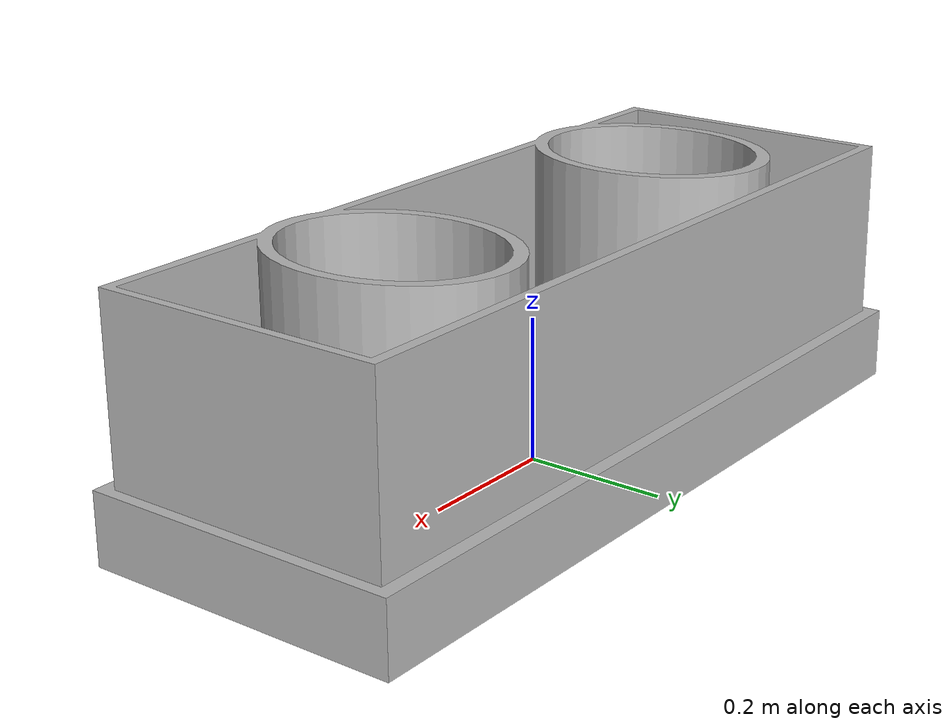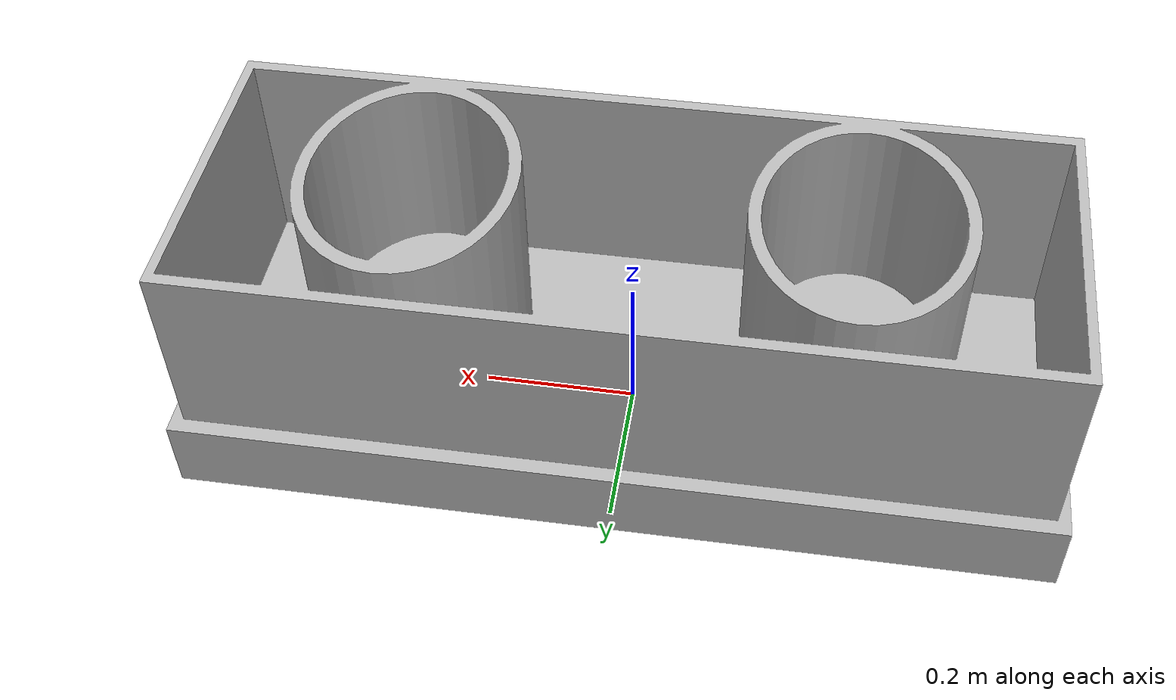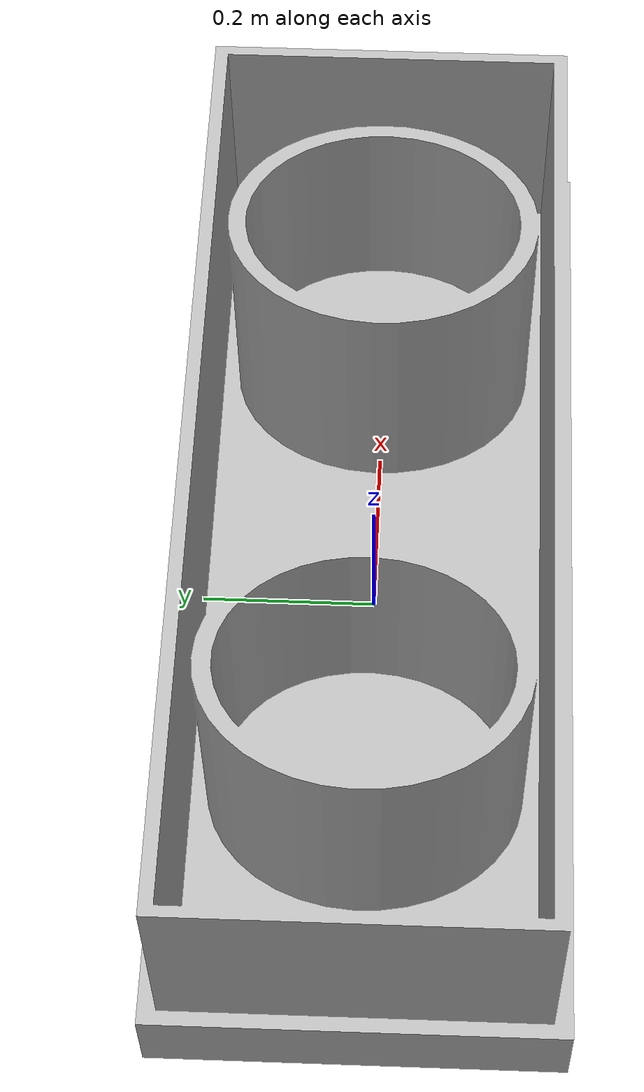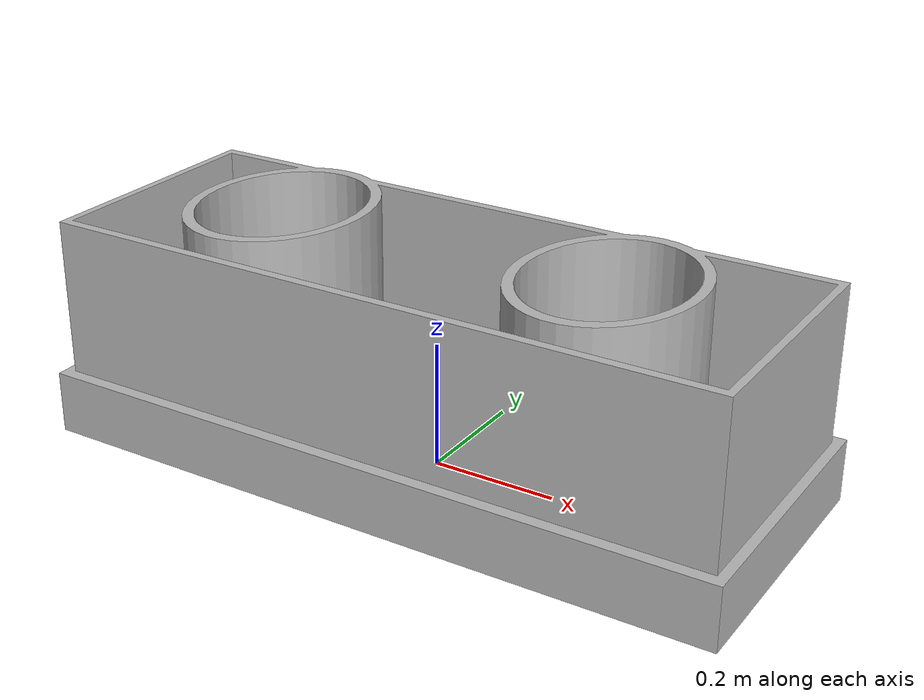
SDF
<?xml version='1.0'?>
<sdf version='1.7'>
  <model name='plant_wooden_box'>
    <link name='link_0'>
      <pose>0 0 0 0 -0 0</pose>
      <gravity>1</gravity>
      <visual name='visual'>
        <pose>0 0 0 0 -0 0</pose>
        <geometry>
          <mesh>
            <uri>model://plant_wooden_box/meshes/plant_wooden_box.dae</uri>
            <scale>0.8 1 1</scale>
          </mesh>
        </geometry>
        <transparency>0</transparency>
        <cast_shadows>0</cast_shadows>
      </visual>
      <collision name='collision'>
        <pose>0 0 0 0 0 0</pose>
        <geometry>
          <mesh>
            <uri>model://models/plant_wooden_box/meshes/plant_wooden_box.stl</uri>
            <scale>0.8 1 1</scale>
          </mesh>
        </geometry>
      </collision>
    </link>
    <static>1</static>
  </model>
</sdf>
